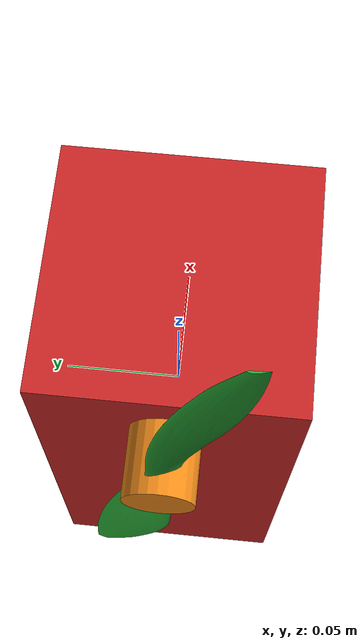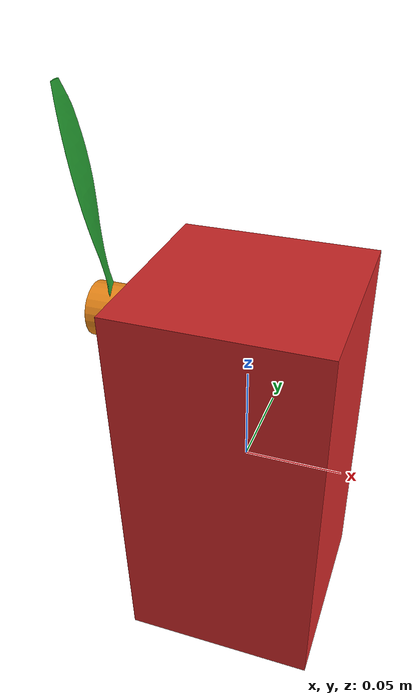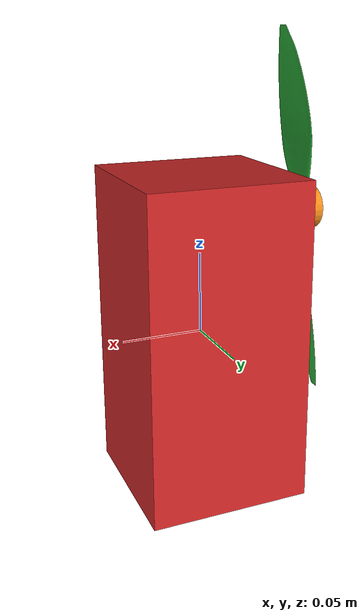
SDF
<sdf version="1.6">
  <model name="thrust_stand">
    <link name="base_link">
      <collision name="collision">
        <geometry>
          <box>
            <size>0.1 0.1 0.2</size>
          </box>
        </geometry>
      </collision>
      <visual name="visual">
        <geometry>
          <box>
            <size>0.1 0.1 0.2</size>
          </box>
        </geometry>
        <material>
          <script>
            <name>Gazebo/Red</name>
            <uri>file://media/materials/scripts/gazebo.material</uri>
          </script>
        </material>
      </visual>
      <inertial>
        <inertia>
          <ixx>0.4166666666666667</ixx>
          <iyy>0.4166666666666667</iyy>
          <izz>0.16666666666666669</izz>
          <ixy>0.0</ixy>
          <ixz>0.0</ixz>
          <iyz>0.0</iyz>
        </inertia>
        <pose frame="">0 0 0 0 -0 0</pose>
        <mass>100.0</mass>
      </inertial>
    </link>
    <link name="imu_link">
      <sensor name="imu_sensor" type="imu">
        <imu/>
        <pose frame="">0 0 0 3.14159 0 0</pose>
        <always_on>1</always_on>
        <update_rate>50.0</update_rate>
      </sensor>
      <inertial>
        <inertia>
          <ixx>1.6666666666666668e-07</ixx>
          <iyy>1.6666666666666668e-07</iyy>
          <izz>1.6666666666666668e-07</izz>
          <ixy>0.0</ixy>
          <ixz>0.0</ixz>
          <iyz>0.0</iyz>
        </inertia>
        <pose frame="">0 0 0 0 -0 0</pose>
        <mass>0.01</mass>
      </inertial>
    </link>
    <link name="motor_link">
      <pose frame="">-0.06375 0 0.073 0 -1.5708 0</pose>
      <collision name="collision">
        <geometry>
          <cylinder>
            <radius>0.0135</radius>
            <length>0.0275</length>
          </cylinder>
        </geometry>
      </collision>
      <visual name="visual">
        <geometry>
          <cylinder>
            <radius>0.0135</radius>
            <length>0.0275</length>
          </cylinder>
        </geometry>
        <material>
          <script>
            <name>Gazebo/Orange</name>
            <uri>file://media/materials/scripts/gazebo.material</uri>
          </script>
        </material>
      </visual>
      <visual name="prop_visual">
        <geometry>
          <mesh>
            <uri>/Users/rhys/CloudStation/Projects/GazeboPhysics/meshes/propeller_9x4.7.stl</uri>
            <scale>1 1 1</scale>
          </mesh>
        </geometry>
        <material>
          <script>
            <name>Gazebo/Green</name>
            <uri>file://media/materials/scripts/gazebo.material</uri>
          </script>
        </material>
      </visual>
      <inertial>
        <inertia>
          <ixx>5.211999999999999e-06</ixx>
          <iyy>5.211999999999999e-06</iyy>
          <izz>4.374e-06</izz>
          <ixy>0.0</ixy>
          <ixz>0.0</ixz>
          <iyz>0.0</iyz>
        </inertia>
        <pose frame="">0 0 0 0 -0 0</pose>
        <mass>0.048</mass>
      </inertial>
    </link>
    <joint name="motor_joint" type="revolute">
      <parent>base_link</parent>
      <child>motor_link</child>
      <axis>
        <xyz>0 0 1</xyz>
        <limit>
          <lower>-1e+16</lower>
          <upper>1e+16</upper>
        </limit>
        <dynamics>
          <spring_reference>0</spring_reference>
          <spring_stiffness>0</spring_stiffness>
          <damping>0.0001</damping>
          <friction>0.0001</friction>
        </dynamics>
      </axis>
      <sensor name="force_torque_sensor" type="force_torque">
        <always_on>1</always_on>
        <update_rate>30.0</update_rate>
        <visualize>1</visualize>
      </sensor>
    </joint>
    <joint name="imu_joint" type="revolute">
      <parent>base_link</parent>
      <child>imu_link</child>
      <axis>
        <xyz>0 0 1</xyz>
        <limit>
          <lower>-1e+16</lower>
          <upper>1e+16</upper>
        </limit>
      </axis>
    </joint>
    <plugin name="prop_blade_1_liftdrag" filename="libLiftDragPlugin.so">
      <a0>0.3</a0>
      <alpha_stall>1.4</alpha_stall>
      <cla>4.25</cla>
      <cda>0.1</cda>
      <cma>0</cma>
      <cla_stall>-0.025</cla_stall>
      <cda_stall>0</cda_stall>
      <cma_stall>0</cma_stall>
      <area>0.002</area>
      <air_density>1.2041</air_density>
      <cp>0.084 0 0</cp>
      <forward>0 1.0 0</forward>
      <upward>0 0 1</upward>
      <link_name>motor_link</link_name>
    </plugin>
    <plugin name="prop_blade_2_liftdrag" filename="libLiftDragPlugin.so">
      <a0>0.3</a0>
      <alpha_stall>1.4</alpha_stall>
      <cla>4.25</cla>
      <cda>0.1</cda>
      <cma>0</cma>
      <cla_stall>-0.025</cla_stall>
      <cda_stall>0</cda_stall>
      <cma_stall>0</cma_stall>
      <area>0.002</area>
      <air_density>1.2041</air_density>
      <cp>-0.084 0 0</cp>
      <forward>0 -1.0 0</forward>
      <upward>0 0 1</upward>
      <link_name>motor_link</link_name>
    </plugin>
    <plugin name="ardupilot_plugin" filename="libArduPilotPlugin.so">
      <fdm_addr>127.0.0.1</fdm_addr>
      <fdm_port_in>9002</fdm_port_in>
      <connectionTimeoutMaxCount>5</connectionTimeoutMaxCount>
      <modelXYZToAirplaneXForwardZDown>0 0 0 3.141592653589793 0 0</modelXYZToAirplaneXForwardZDown>
      <gazeboXYZToNED>0 0 0 3.141592653589793 0 0</gazeboXYZToNED>
      <imuName>imu_link::imu_sensor</imuName>
      <control channel="2">
        <jointName>motor_joint</jointName>
        <useForce>1</useForce>
        <multiplier>-800</multiplier>
        <offset>0</offset>
        <servo_min>1000</servo_min>
        <servo_max>2000</servo_max>
        <type>VELOCITY</type>
        <p_gain>0.001</p_gain>
        <i_gain>0</i_gain>
        <d_gain>0</d_gain>
        <i_max>0.1</i_max>
        <i_min>-0.1</i_min>
        <cmd_max>5.0</cmd_max>
        <cmd_min>-5.0</cmd_min>
      </control>
    </plugin>
  </model>
</sdf>
